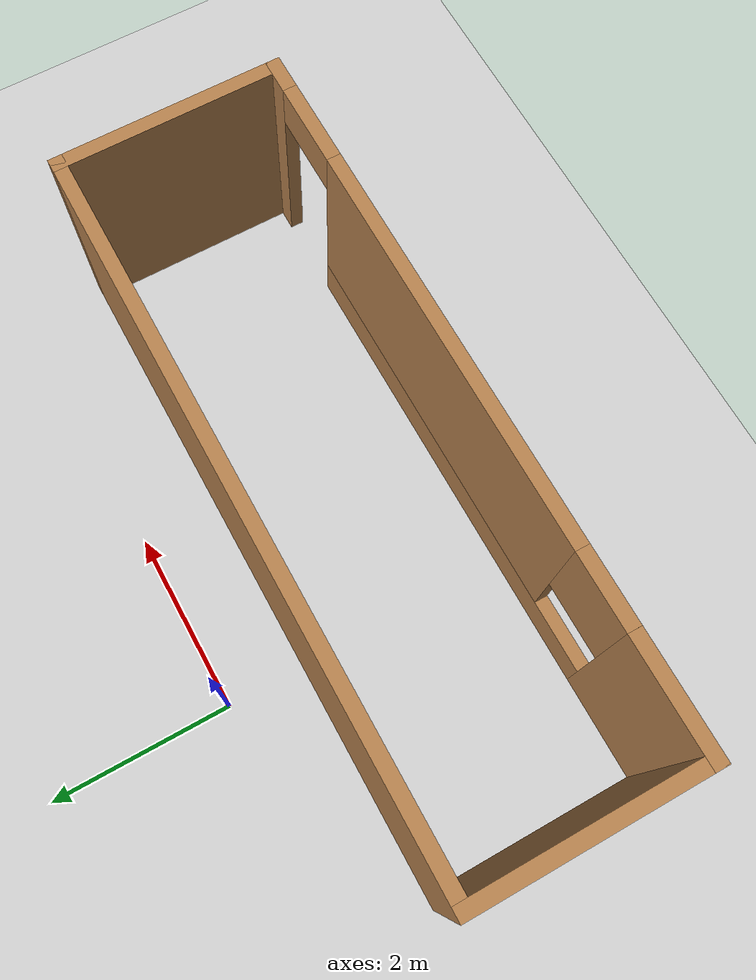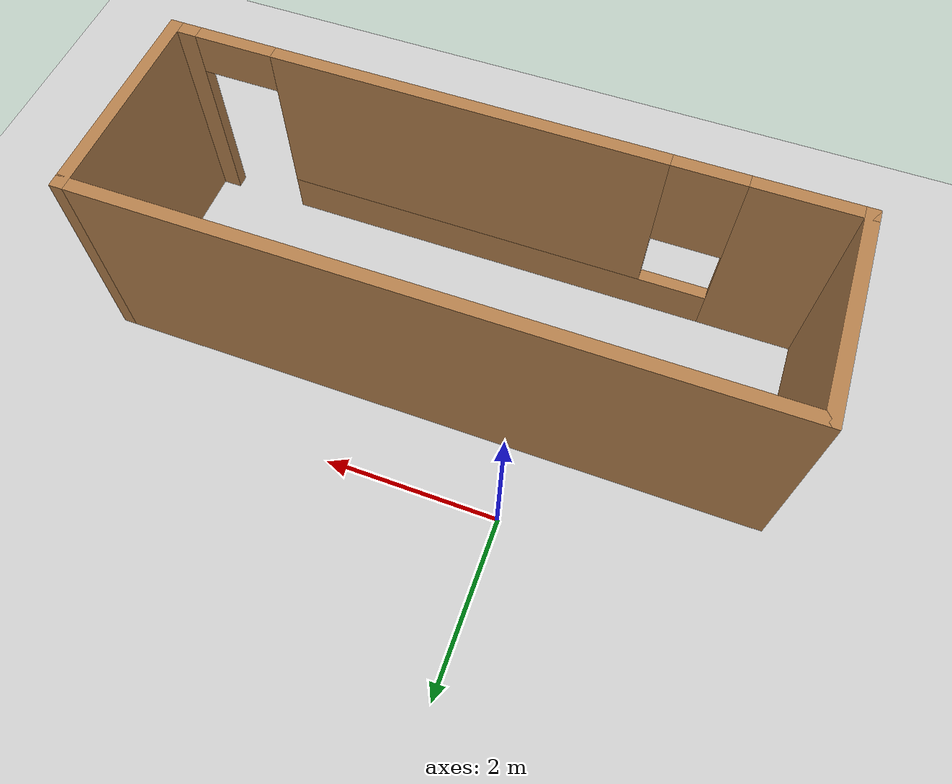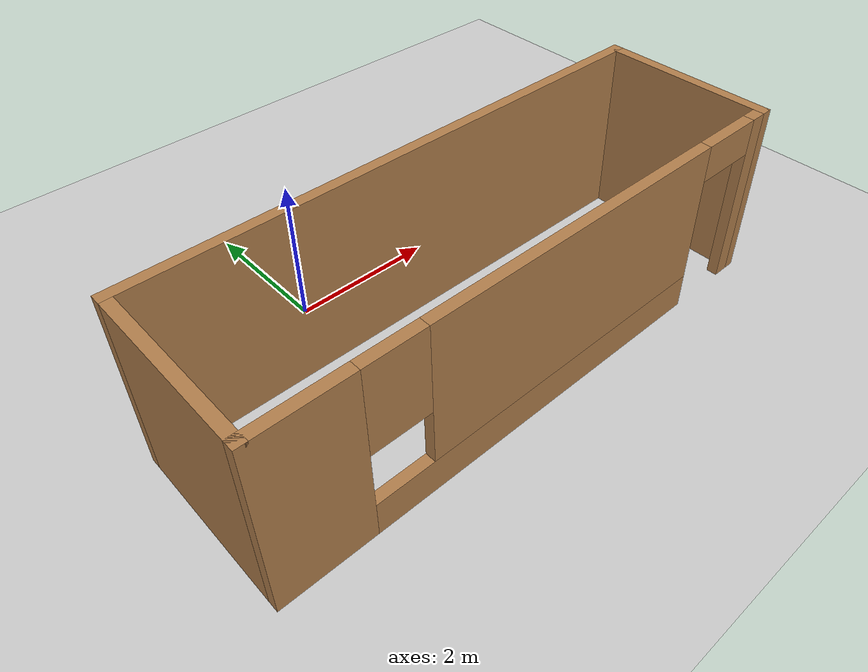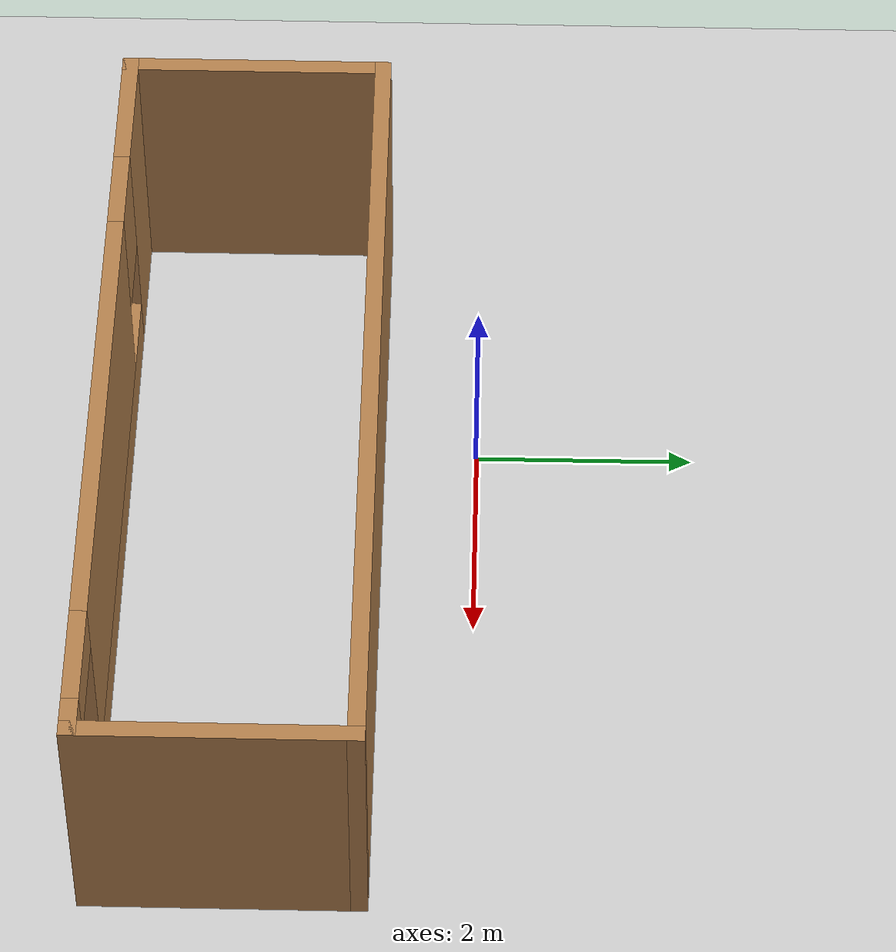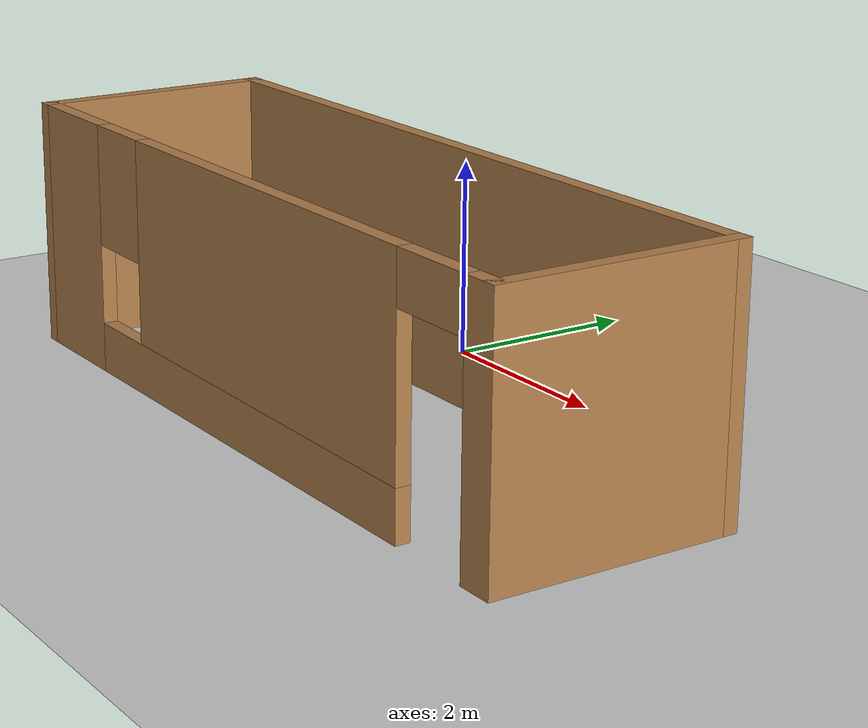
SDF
<sdf version="1.7">
 <world name="default">
  <light name="sun" type="directional">
   <pose>0 0 10 0 -0 0</pose>
   <diffuse>0.8 0.8 0.8 1</diffuse>
   <specular>0.2 0.2 0.2 1</specular>
   <attenuation>
    <range>1000</range>
    <constant>0.9</constant>
    <linear>0.01</linear>
    <quadratic>0.001</quadratic>
   </attenuation>
   <direction>-0.5 0.1 -0.9</direction>
   <spot><inner_angle>0</inner_angle><outer_angle>0</outer_angle><falloff>0</falloff></spot>
  </light>
  <model name="ground_plane">
   <static>1</static>
   <link name="link">
    <collision name="collision">
     <geometry><plane><normal>0 0 1</normal><size>100 100</size></plane></geometry>
     <surface>
      <contact><collide_bitmask>65535</collide_bitmask></contact>
      <friction><ode><mu>100</mu><mu2>50</mu2></ode></friction>
     </surface>
    </collision>
    <visual name="visual">
     <cast_shadows>0</cast_shadows>
     <geometry><plane><normal>0 0 1</normal><size>100 100</size></plane></geometry>
     <material>
      <script><uri>file://media/materials/scripts/gazebo.material</uri><name>Gazebo/Grey</name></script>
     </material>
    </visual>
   </link>
  </model>
  <gravity>0 0 -9.8</gravity>
  <magnetic_field>6e-06 2.3e-05 -4.2e-05</magnetic_field>
  <atmosphere type="adiabatic"/>
  <physics type="ode">
   <max_step_size>0.001</max_step_size>
   <real_time_factor>1</real_time_factor>
   <real_time_update_rate>1000</real_time_update_rate>
  </physics>
  <scene><ambient>0.4 0.4 0.4 1</ambient><background>0.7 0.7 0.7 1</background><shadows>1</shadows></scene>
  <spherical_coordinates>
   <surface_model>EARTH_WGS84</surface_model>
   <latitude_deg>0</latitude_deg>
   <longitude_deg>0</longitude_deg>
   <elevation>0</elevation>
   <heading_deg>0</heading_deg>
  </spherical_coordinates>
  <model name="example">
   <pose>1.18 -1.6775 0 0 -0 0</pose>
   <link name="Wall_0">
    <collision name="Wall_0_Collision">
     <geometry><box><size>2.5 0.15 2.5</size></box></geometry>
     <pose>0 0 1.25 0 -0 0</pose>
    </collision>
    <visual name="Wall_0_Visual">
     <pose>0 0 1.25 0 -0 0</pose>
     <geometry><box><size>2.5 0.15 2.5</size></box></geometry>
     <material>
      <script><uri>file://media/materials/scripts/gazebo.material</uri><name>Gazebo/Wood</name></script>
      <ambient>1 1 1 1</ambient>
     </material>
     <meta><layer>0</layer></meta>
    </visual>
    <pose>-3.8 -0.4275 0 0 -0 -1.5708</pose>
   </link>
   <link name="Wall_3">
    <pose>-0 -1.6025 0 0 -0 0</pose>
    <visual name="Wall_3_Visual_0">
     <pose>-3.23944 0 1.25 0 -0 0</pose>
     <geometry><box><size>1.27113 0.15 2.5</size></box></geometry>
     <material>
      <script><uri>file://media/materials/scripts/gazebo.material</uri><name>Gazebo/Wood</name></script>
      <ambient>1 1 1 1</ambient>
     </material>
     <meta><layer>0</layer></meta>
    </visual>
    <collision name="Wall_3_Collision_0">
     <geometry><box><size>1.27113 0.15 2.5</size></box></geometry>
     <pose>-3.23944 0 1.25 0 -0 0</pose>
    </collision>
    <visual name="Wall_3_Visual_1">
     <pose>3.68916 0 1.25 0 -0 0</pose>
     <geometry><box><size>0.371672 0.15 2.5</size></box></geometry>
     <material>
      <script><uri>file://media/materials/scripts/gazebo.material</uri><name>Gazebo/Wood</name></script>
      <ambient>1 1 1 1</ambient>
     </material>
     <meta><layer>0</layer></meta>
    </visual>
    <collision name="Wall_3_Collision_1">
     <geometry><box><size>0.371672 0.15 2.5</size></box></geometry>
     <pose>3.68916 0 1.25 0 -0 0</pose>
    </collision>
    <visual name="Wall_3_Visual_2">
     <pose>-0.000273 0 0.25 0 -0 0</pose>
     <geometry><box><size>5.2072 0.15 0.5</size></box></geometry>
     <material>
      <script><uri>file://media/materials/scripts/gazebo.material</uri><name>Gazebo/Wood</name></script>
      <ambient>1 1 1 1</ambient>
     </material>
     <meta><layer>0</layer></meta>
    </visual>
    <collision name="Wall_3_Collision_2">
     <geometry><box><size>5.2072 0.15 0.5</size></box></geometry>
     <pose>-0.000273 0 0.25 0 -0 0</pose>
    </collision>
    <visual name="Wall_3_Visual_3">
     <pose>0.399727 0 1.5 0 -0 0</pose>
     <geometry><box><size>4.4072 0.15 2</size></box></geometry>
     <material>
      <script><uri>file://media/materials/scripts/gazebo.material</uri><name>Gazebo/Wood</name></script>
      <ambient>1 1 1 1</ambient>
     </material>
     <meta><layer>0</layer></meta>
    </visual>
    <collision name="Wall_3_Collision_3">
     <geometry><box><size>4.4072 0.15 2</size></box></geometry>
     <pose>0.399727 0 1.5 0 -0 0</pose>
    </collision>
    <visual name="Wall_3_Visual_4">
     <pose>-2.20387 0 1.9 0 -0 0</pose>
     <geometry><box><size>0.8 0.15 1.2</size></box></geometry>
     <material>
      <script><uri>file://media/materials/scripts/gazebo.material</uri><name>Gazebo/Wood</name></script>
      <ambient>1 1 1 1</ambient>
     </material>
     <meta><layer>0</layer></meta>
    </visual>
    <collision name="Wall_3_Collision_4">
     <geometry><box><size>0.8 0.15 1.2</size></box></geometry>
     <pose>-2.20387 0 1.9 0 -0 0</pose>
    </collision>
    <visual name="Wall_3_Visual_5">
     <pose>3.05333 0 2.25 0 -0 0</pose>
     <geometry><box><size>0.9 0.15 0.5</size></box></geometry>
     <material>
      <script><uri>file://media/materials/scripts/gazebo.material</uri><name>Gazebo/Wood</name></script>
      <ambient>1 1 1 1</ambient>
     </material>
     <meta><layer>0</layer></meta>
    </visual>
    <collision name="Wall_3_Collision_5">
     <geometry><box><size>0.9 0.15 0.5</size></box></geometry>
     <pose>3.05333 0 2.25 0 -0 0</pose>
    </collision>
   </link>
   <link name="Wall_4">
    <collision name="Wall_4_Collision">
     <geometry><box><size>2.5 0.15 2.5</size></box></geometry>
     <pose>0 0 1.25 0 -0 0</pose>
    </collision>
    <visual name="Wall_4_Visual">
     <pose>0 0 1.25 0 -0 0</pose>
     <geometry><box><size>2.5 0.15 2.5</size></box></geometry>
     <material>
      <script><uri>file://media/materials/scripts/gazebo.material</uri><name>Gazebo/Wood</name></script>
      <ambient>1 1 1 1</ambient>
     </material>
     <meta><layer>0</layer></meta>
    </visual>
    <pose>3.8 -0.4275 0 0 -0 1.5708</pose>
   </link>
   <link name="Wall_5">
    <collision name="Wall_5_Collision">
     <geometry><box><size>7.75 0.15 2.5</size></box></geometry>
     <pose>0 0 1.25 0 -0 0</pose>
    </collision>
    <visual name="Wall_5_Visual">
     <pose>0 0 1.25 0 -0 0</pose>
     <geometry><box><size>7.75 0.15 2.5</size></box></geometry>
     <material>
      <script><uri>file://media/materials/scripts/gazebo.material</uri><name>Gazebo/Wood</name></script>
      <ambient>1 1 1 1</ambient>
     </material>
     <meta><layer>0</layer></meta>
    </visual>
    <pose>-0 0.7475 0 0 -0 3.14159</pose>
   </link>
   <static>1</static>
  </model>
 </world>
</sdf>
